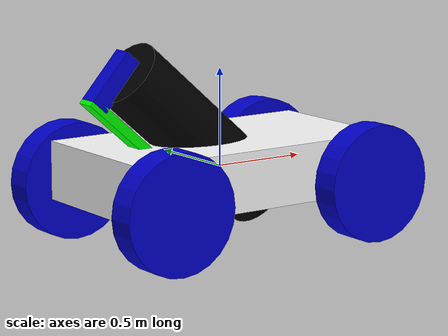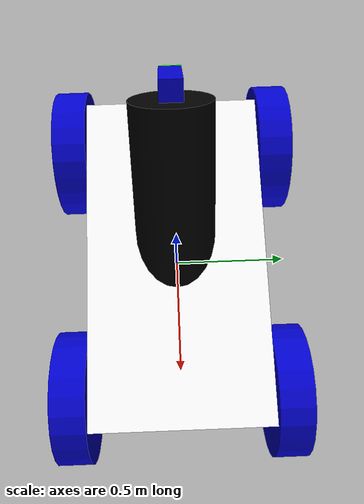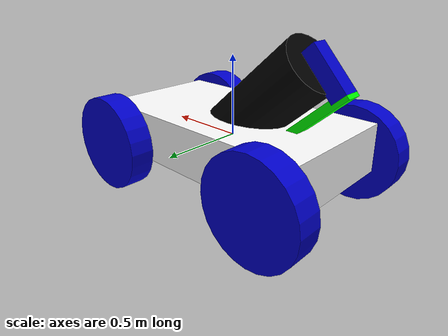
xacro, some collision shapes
<?xml version="1.0" ?>
<!-- |    This document was autogenerated by xacro from lunarbot2.xacro                | -->
<!-- |    EDITING THIS FILE BY HAND IS NOT RECOMMENDED                                 | -->
<!--Name of robot-->
<robot name="Roberto_MkII">
  <!--Naming Materials-->
  <material name="blue">
    <color rgba="0 0 0.8 1"/>
  </material>
  <material name="white">
    <color rgba="1 1 1 1"/>
  </material>
  <material name="black">
    <color rgba="0 0 0 1"/>
  </material>
  <material name="green">
    <color rgba="0 1 0 1"/>
  </material>
  <!--Links-->
  <!--Body(base_link)-->
  <link name="base_link">
    <!--Visual-->
    <visual>
      <geometry>
        <mesh filename="package://lunarbot/meshes/base_link2.stl"/>
      </geometry>
      <material name="white"/>
    </visual>
    <!--Collision-->
    <collision>
      <geometry>
        <box size="1.5 0.8 .3"/>
      </geometry>
    </collision>
    <inertial>
      <mass value="108.09"/>
      <!--inertia: required by Gazebo-->
      <!--6 values: ixx ixy ixz iyy iyz izz-->
      <inertia ixx="4.05" ixy="0" ixz="0" iyy="9.82" iyz="0" izz="12.25"/>
    </inertial>
    <gazebo>
      <material>Gazebo/Grey</material>
    </gazebo>
  </link>
  <link name="link_0">
    <visual>
      <geometry>
        <cylinder length="0.15" radius="0.3"/>
      </geometry>
      <origin rpy="1.57075 0 0"/>
      <material name="blue"/>
    </visual>
    <collision>
      <geometry>
        <cylinder length="0.15" radius="0.3"/>
      </geometry>
      <origin rpy="1.57075 0 0"/>
    </collision>
    <inertial>
      <mass value="12.01"/>
      <inertia ixx=".14" ixy="0" ixz="0" iyy="0.24" iyz="0" izz=".14"/>
    </inertial>
  </link>
  <joint name="joint_0" type="continuous">
    <parent link="base_link"/>
    <child link="link_0"/>
    <axis xyz="0 1 0"/>
    <origin xyz="0.6 0.475 -0.075"/>
  </joint>
  <!--Connects Gazebo to ROS Controls-->
  <transmission name="joint_0_wheel_trans">
    <type>transmission_interface/SimpleTransmission</type>
    <actuator name="joint_0_wheel_motor">
      <mechanicalReduction>1</mechanicalReduction>
    </actuator>
    <joint name="joint_0">
      <hardwareInterface>hardware_interface/VelocityJointInterface
        </hardwareInterface>
    </joint>
  </transmission>
  <!--Some extra Gazebo details-->
  <gazebo reference="link_0">
    <mu1 value="200.0"/>
    <mu2 value="100.0"/>
    <kp value="10000000.0"/>
    <kd value="1.0"/>
    <material>Gazebo/Blue</material>
  </gazebo>
  <link name="link_1">
    <visual>
      <geometry>
        <cylinder length="0.15" radius="0.3"/>
      </geometry>
      <origin rpy="1.57075 0 0"/>
      <material name="blue"/>
    </visual>
    <collision>
      <geometry>
        <cylinder length="0.15" radius="0.3"/>
      </geometry>
      <origin rpy="1.57075 0 0"/>
    </collision>
    <inertial>
      <mass value="12.01"/>
      <inertia ixx=".14" ixy="0" ixz="0" iyy="0.24" iyz="0" izz=".14"/>
    </inertial>
  </link>
  <joint name="joint_1" type="continuous">
    <parent link="base_link"/>
    <child link="link_1"/>
    <axis xyz="0 1 0"/>
    <origin xyz="0.6 -0.475 -0.075"/>
  </joint>
  <!--Connects Gazebo to ROS Controls-->
  <transmission name="joint_1_wheel_trans">
    <type>transmission_interface/SimpleTransmission</type>
    <actuator name="joint_1_wheel_motor">
      <mechanicalReduction>1</mechanicalReduction>
    </actuator>
    <joint name="joint_1">
      <hardwareInterface>hardware_interface/VelocityJointInterface
        </hardwareInterface>
    </joint>
  </transmission>
  <!--Some extra Gazebo details-->
  <gazebo reference="link_1">
    <mu1 value="200.0"/>
    <mu2 value="100.0"/>
    <kp value="10000000.0"/>
    <kd value="1.0"/>
    <material>Gazebo/Blue</material>
  </gazebo>
  <link name="link_2">
    <visual>
      <geometry>
        <cylinder length="0.15" radius="0.3"/>
      </geometry>
      <origin rpy="1.57075 0 0"/>
      <material name="blue"/>
    </visual>
    <collision>
      <geometry>
        <cylinder length="0.15" radius="0.3"/>
      </geometry>
      <origin rpy="1.57075 0 0"/>
    </collision>
    <inertial>
      <mass value="12.01"/>
      <inertia ixx=".14" ixy="0" ixz="0" iyy="0.24" iyz="0" izz=".14"/>
    </inertial>
  </link>
  <joint name="joint_2" type="continuous">
    <parent link="base_link"/>
    <child link="link_2"/>
    <axis xyz="0 1 0"/>
    <origin xyz="-0.6 0.475 -0.075"/>
  </joint>
  <!--Connects Gazebo to ROS Controls-->
  <transmission name="joint_2_wheel_trans">
    <type>transmission_interface/SimpleTransmission</type>
    <actuator name="joint_2_wheel_motor">
      <mechanicalReduction>1</mechanicalReduction>
    </actuator>
    <joint name="joint_2">
      <hardwareInterface>hardware_interface/VelocityJointInterface
        </hardwareInterface>
    </joint>
  </transmission>
  <!--Some extra Gazebo details-->
  <gazebo reference="link_2">
    <mu1 value="200.0"/>
    <mu2 value="100.0"/>
    <kp value="10000000.0"/>
    <kd value="1.0"/>
    <material>Gazebo/Blue</material>
  </gazebo>
  <link name="link_3">
    <visual>
      <geometry>
        <cylinder length="0.15" radius="0.3"/>
      </geometry>
      <origin rpy="1.57075 0 0"/>
      <material name="blue"/>
    </visual>
    <collision>
      <geometry>
        <cylinder length="0.15" radius="0.3"/>
      </geometry>
      <origin rpy="1.57075 0 0"/>
    </collision>
    <inertial>
      <mass value="12.01"/>
      <inertia ixx=".14" ixy="0" ixz="0" iyy="0.24" iyz="0" izz=".14"/>
    </inertial>
  </link>
  <joint name="joint_3" type="continuous">
    <parent link="base_link"/>
    <child link="link_3"/>
    <axis xyz="0 1 0"/>
    <origin xyz="-0.6 -0.475 -0.075"/>
  </joint>
  <!--Connects Gazebo to ROS Controls-->
  <transmission name="joint_3_wheel_trans">
    <type>transmission_interface/SimpleTransmission</type>
    <actuator name="joint_3_wheel_motor">
      <mechanicalReduction>1</mechanicalReduction>
    </actuator>
    <joint name="joint_3">
      <hardwareInterface>hardware_interface/VelocityJointInterface
        </hardwareInterface>
    </joint>
  </transmission>
  <!--Some extra Gazebo details-->
  <gazebo reference="link_3">
    <mu1 value="200.0"/>
    <mu2 value="100.0"/>
    <kp value="10000000.0"/>
    <kd value="1.0"/>
    <material>Gazebo/Blue</material>
  </gazebo>
  <link name="auger">
    <visual>
      <origin xyz="0 0 -1.2"/>
      <geometry>
        <mesh filename="package://lunarbot/meshes/auger.stl"/>
      </geometry>
      <material name="black"/>
    </visual>
    <collision>
      <geometry>
        <cylinder length="1.05" radius=".18"/>
      </geometry>
      <origin xyz="0 0 -.565"/>
    </collision>
    <inertial>
      <mass value="33"/>
      <inertia ixx="4.73" ixy="0" ixz="0" iyy="4.73" iyz="0" izz=".165"/>
    </inertial>
  </link>
  <joint name="auger_joint" type="continuous">
    <parent link="link_5"/>
    <child link="auger"/>
    <axis xyz="0 0 1"/>
    <origin xyz=".23 0 0"/>
  </joint>
  <transmission name="auger_joint_trans">
    <type>transmission_interface/SimpleTransmission</type>
    <actuator name="auger_joint_motor">
      <mechanicalReduction>1</mechanicalReduction>
    </actuator>
    <joint name="auger_joint">
      <hardwareInterface>hardware_interface/VelocityJointInterface
      </hardwareInterface>
    </joint>
  </transmission>
  <link name="link_4">
    <visual>
      <geometry>
        <box size=".05 .1 .8"/>
      </geometry>
      <origin xyz="0 0 .3"/>
      <material name="green"/>
    </visual>
    <gazebo>
      <material>Gazebo/Yellow</material>
    </gazebo>
  </link>
  <joint name="joint_4" type="fixed">
    <parent link="base_link"/>
    <child link="link_4"/>
    <origin rpy="0 -.85 0" xyz="-.25 0 -.05"/>
  </joint>
  <link name="link_5">
    <visual>
      <geometry>
        <box size=".1 .1 .3"/>
      </geometry>
      <origin rpy="0 1.575 0" xyz=".15 0 0"/>
      <material name="blue"/>
    </visual>
  </link>
  <joint name="joint_5" type="prismatic">
    <parent link="link_4"/>
    <child link="link_5"/>
    <axis xyz="0 0 1"/>
    <limit effort="1000" lower="-.55" upper="0" velocity=".5"/>
    <origin xyz="0 0 .65"/>
  </joint>
  <transmission name="joint_5_trans">
    <type>transmission_interface/SimpleTransmission</type>
    <actuator name="joint_5_motor">
      <mechanicalReduction>1</mechanicalReduction>
    </actuator>
    <joint name="joint_5">
      <hardwareInterface>hardware_interface/EffortJointInterface
      </hardwareInterface>
    </joint>
  </transmission>
  <!--Gazebo plugin for ROS controls-->
  <gazebo>
    <plugin filename="libgazebo_ros_control.so" name="gazebo_ros_control"/>
  </gazebo>
</robot>
